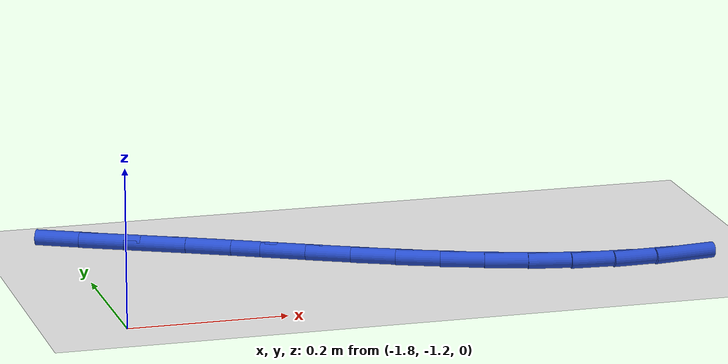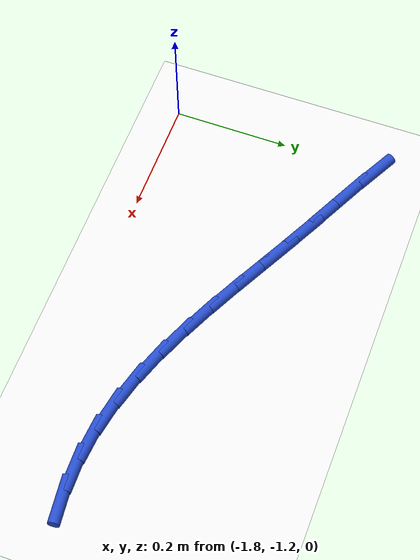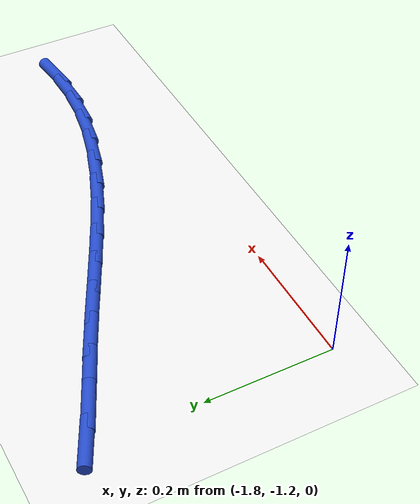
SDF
<sdf version="1.6">
 <world name="default">
  <model name="ground_plane">
   <static>1</static>
   <link name="link">
    <collision name="collision">
     <geometry><plane><normal>0 0 1</normal><size>100 100</size></plane></geometry>
     <surface><friction><ode><mu>100</mu><mu2>50</mu2></ode></friction></surface>
    </collision>
    <visual name="visual">
     <cast_shadows>0</cast_shadows>
     <geometry><plane><normal>0 0 1</normal><size>100 100</size></plane></geometry>
     <material>
      <script><uri>file://media/materials/scripts/gazebo.material</uri><name>Gazebo/WhiteGlow</name></script>
     </material>
    </visual>
   </link>
  </model>
  <model name="line">
   <link name="link_77">
    <pose>-1.7953671843715533 -0.8347314830359791 0.01 0 1.57 -0.4736982937050593</pose>
    <collision name="collision">
     <geometry><cylinder><radius>0.01</radius><length>0.08</length></cylinder></geometry>
    </collision>
    <visual name="visual">
     <material>
      <script><name>Gazebo/Blue</name><uri>file://media/materials/scripts/gazebo.material</uri></script>
     </material>
     <geometry><cylinder><radius>0.01</radius><length>0.08</length></cylinder></geometry>
    </visual>
   </link>
   <link name="link_78">
    <pose>-1.7442488780700323 -0.8609361191686773 0.01 0 1.57 -0.4505919440834153</pose>
    <collision name="collision">
     <geometry><cylinder><radius>0.01</radius><length>0.08</length></cylinder></geometry>
    </collision>
    <visual name="visual">
     <material>
      <script><name>Gazebo/Blue</name><uri>file://media/materials/scripts/gazebo.material</uri></script>
     </material>
     <geometry><cylinder><radius>0.01</radius><length>0.08</length></cylinder></geometry>
    </visual>
   </link>
   <link name="link_79">
    <pose>-1.6916312436003638 -0.8863917595681486 0.01 0 1.57 -0.4497274599923352</pose>
    <collision name="collision">
     <geometry><cylinder><radius>0.01</radius><length>0.08</length></cylinder></geometry>
    </collision>
    <visual name="visual">
     <material>
      <script><name>Gazebo/Blue</name><uri>file://media/materials/scripts/gazebo.material</uri></script>
     </material>
     <geometry><cylinder><radius>0.01</radius><length>0.08</length></cylinder></geometry>
    </visual>
   </link>
   <link name="link_80">
    <pose>-1.6385274832136605 -0.9120259523381082 0.01 0 1.57 -0.46466941872627265</pose>
    <collision name="collision">
     <geometry><cylinder><radius>0.01</radius><length>0.08</length></cylinder></geometry>
    </collision>
    <visual name="visual">
     <material>
      <script><name>Gazebo/Blue</name><uri>file://media/materials/scripts/gazebo.material</uri></script>
     </material>
     <geometry><cylinder><radius>0.01</radius><length>0.08</length></cylinder></geometry>
    </visual>
   </link>
   <link name="link_81">
    <pose>-1.5857541001379565 -0.9384800837999072 0.01 0 1.57 -0.4731840563876607</pose>
    <collision name="collision">
     <geometry><cylinder><radius>0.01</radius><length>0.08</length></cylinder></geometry>
    </collision>
    <visual name="visual">
     <material>
      <script><name>Gazebo/Blue</name><uri>file://media/materials/scripts/gazebo.material</uri></script>
     </material>
     <geometry><cylinder><radius>0.01</radius><length>0.08</length></cylinder></geometry>
    </visual>
   </link>
   <link name="link_82">
    <pose>-1.53337316291234 -0.9652979731803241 0.01 0 1.57 -0.4699030912068987</pose>
    <collision name="collision">
     <geometry><cylinder><radius>0.01</radius><length>0.08</length></cylinder></geometry>
    </collision>
    <visual name="visual">
     <material>
      <script><name>Gazebo/Blue</name><uri>file://media/materials/scripts/gazebo.material</uri></script>
     </material>
     <geometry><cylinder><radius>0.01</radius><length>0.08</length></cylinder></geometry>
    </visual>
   </link>
   <link name="link_83">
    <pose>-1.4812658916386616 -0.991760337681904 0.01 0 1.57 -0.4545423584425822</pose>
    <collision name="collision">
     <geometry><cylinder><radius>0.01</radius><length>0.08</length></cylinder></geometry>
    </collision>
    <visual name="visual">
     <material>
      <script><name>Gazebo/Blue</name><uri>file://media/materials/scripts/gazebo.material</uri></script>
     </material>
     <geometry><cylinder><radius>0.01</radius><length>0.08</length></cylinder></geometry>
    </visual>
   </link>
   <link name="link_84">
    <pose>-1.429313506418773 -1.017147894507191 0.01 0 1.57 -0.42655018998140953</pose>
    <collision name="collision">
     <geometry><cylinder><radius>0.01</radius><length>0.08</length></cylinder></geometry>
    </collision>
    <visual name="visual">
     <material>
      <script><name>Gazebo/Blue</name><uri>file://media/materials/scripts/gazebo.material</uri></script>
     </material>
     <geometry><cylinder><radius>0.01</radius><length>0.08</length></cylinder></geometry>
    </visual>
   </link>
   <link name="link_85">
    <pose>-1.3773972273545245 -1.0407413608587301 0.01 0 1.57 -0.38514819983880955</pose>
    <collision name="collision">
     <geometry><cylinder><radius>0.01</radius><length>0.08</length></cylinder></geometry>
    </collision>
    <visual name="visual">
     <material>
      <script><name>Gazebo/Blue</name><uri>file://media/materials/scripts/gazebo.material</uri></script>
     </material>
     <geometry><cylinder><radius>0.01</radius><length>0.08</length></cylinder></geometry>
    </visual>
   </link>
   <link name="link_86">
    <pose>-1.3253982745477684 -1.061821453939065 0.01 0 1.57 -0.32944266363596963</pose>
    <collision name="collision">
     <geometry><cylinder><radius>0.01</radius><length>0.08</length></cylinder></geometry>
    </collision>
    <visual name="visual">
     <material>
      <script><name>Gazebo/Blue</name><uri>file://media/materials/scripts/gazebo.material</uri></script>
     </material>
     <geometry><cylinder><radius>0.01</radius><length>0.08</length></cylinder></geometry>
    </visual>
   </link>
   <link name="link_87">
    <pose>-1.273197868100355 -1.0796688909507404 0.01 0 1.57 -0.25864590359763934</pose>
    <collision name="collision">
     <geometry><cylinder><radius>0.01</radius><length>0.08</length></cylinder></geometry>
    </collision>
    <visual name="visual">
     <material>
      <script><name>Gazebo/Blue</name><uri>file://media/materials/scripts/gazebo.material</uri></script>
     </material>
     <geometry><cylinder><radius>0.01</radius><length>0.08</length></cylinder></geometry>
    </visual>
   </link>
   <link name="link_88">
    <pose>-1.2206772281141358 -1.093564389096301 0.01 0 1.57 -0.17244559798917286</pose>
    <collision name="collision">
     <geometry><cylinder><radius>0.01</radius><length>0.08</length></cylinder></geometry>
    </collision>
    <visual name="visual">
     <material>
      <script><name>Gazebo/Blue</name><uri>file://media/materials/scripts/gazebo.material</uri></script>
     </material>
     <geometry><cylinder><radius>0.01</radius><length>0.08</length></cylinder></geometry>
    </visual>
   </link>
   <link name="link_89">
    <pose>-1.1677175746909614 -1.1027886655782906 0.01 0 1.57 -0.07296625832382797</pose>
    <collision name="collision">
     <geometry><cylinder><radius>0.01</radius><length>0.08</length></cylinder></geometry>
    </collision>
    <visual name="visual">
     <material>
      <script><name>Gazebo/Blue</name><uri>file://media/materials/scripts/gazebo.material</uri></script>
     </material>
     <geometry><cylinder><radius>0.01</radius><length>0.08</length></cylinder></geometry>
    </visual>
   </link>
   <link name="link_90">
    <pose>-1.1142194414485114 -1.1066991665861603 0.01 0 1.57 0.0253647347048429</pose>
    <collision name="collision">
     <geometry><cylinder><radius>0.01</radius><length>0.08</length></cylinder></geometry>
    </collision>
    <visual name="visual">
     <material>
      <script><name>Gazebo/Blue</name><uri>file://media/materials/scripts/gazebo.material</uri></script>
     </material>
     <geometry><cylinder><radius>0.01</radius><length>0.08</length></cylinder></geometry>
    </visual>
   </link>
   <link name="link_91">
    <pose>-1.0602536966884717 -1.1053300461576814 0.01 0 1.57 0.11487641857957688</pose>
    <collision name="collision">
     <geometry><cylinder><radius>0.01</radius><length>0.08</length></cylinder></geometry>
    </collision>
    <visual name="visual">
     <material>
      <script><name>Gazebo/Blue</name><uri>file://media/materials/scripts/gazebo.material</uri></script>
     </material>
     <geometry><cylinder><radius>0.01</radius><length>0.08</length></cylinder></geometry>
    </visual>
   </link>
  </model>
 </world>
</sdf>
